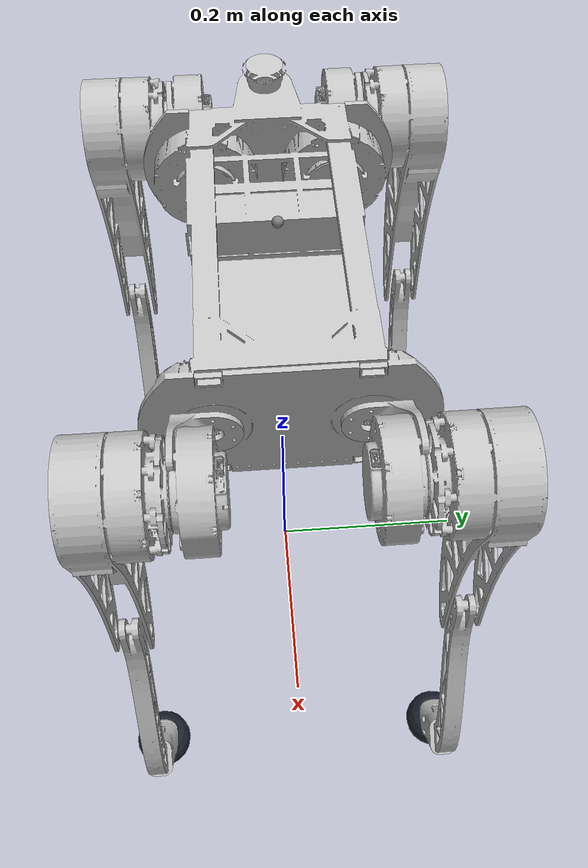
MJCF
<mujoco model="black_description">
  <compiler angle="radian" meshdir="assets"/>
  <option cone="elliptic" impratio="100"/>

  <default>
  <default class="black">
    <joint damping="0.1" armature="0.01" frictionloss="0.2"/>
  </default>
  <default class="foot">
    <geom type="sphere" priority="1" solimp="0.015 1 0.02" condim="6" friction="0.6 0.02 0.01"/>
  </default>
   <default class="motor">
    <motor ctrlrange="-33.5 33.5"/>
   </default>
  </default>

  <asset>
    <mesh name="trunk" file="trunk.STL"/>
    <mesh name="FL_hip" file="FL_hip.STL"/>
    <mesh name="FL_thigh" file="FL_thigh.STL"/>
    <mesh name="FL_calf" file="FL_calf.STL"/>
    <mesh name="FR_hip" file="FR_hip.STL"/>
    <mesh name="FR_thigh" file="FR_thigh.STL"/>
    <mesh name="FR_calf" file="FR_calf.STL"/>
    <mesh name="RR_hip" file="RR_hip.STL"/>
    <mesh name="RR_thigh" file="RR_thigh.STL"/>
    <mesh name="RR_calf" file="RR_calf.STL"/>
    <mesh name="RL_hip" file="RL_hip.STL"/>
    <mesh name="RL_thigh" file="RL_thigh.STL"/>
    <mesh name="RL_calf" file="RL_calf.STL"/>
  </asset>

  <worldbody>
    <geom size="0.0005 0.0005 0.0005" type="box" contype="0" conaffinity="0" group="1" density="0"/>
    <body name="trunk" pos= "0 0 0.5" childclass="black">
      <freejoint/>
      <inertial pos="-0.034324 0.00011667 -0.0701367" quat="0.499998 0.499162 -0.500917 0.499921" mass="5.723" diaginertia="0.012277 0.00872141 0.00759943"/>
      <geom type="mesh" contype="0" conaffinity="0" group="1" density="0" rgba="0.75294 0.75294 0.75294 1" mesh="trunk"/>
      <geom type="mesh" rgba="0.75294 0.75294 0.75294 1" mesh="trunk"/>
      <geom size="0.0005 0.0005 0.0005" type="box" contype="0" conaffinity="0" group="1" density="0" rgba="0.8 0 0 1"/>
      <site name="imu" pos="0 0 0" quat="1 0 0 0"/>
      <body name="FR_hip" pos="0.1566 -0.059999 -0.06425">
        <inertial pos="0.05138 -0.014784 -5.6642e-05" quat="0.718222 0.0109487 0.0108345 0.695644" mass="0.60559" diaginertia="0.000649601 0.00037398 0.000341509"/>
        <joint name="FR_hip_joint" pos="0 0 0" axis="1 0 0" range="-10 10" actuatorfrcrange="-20 20"/>
        <geom type="mesh" contype="0" conaffinity="0" group="1" density="0" rgba="0.75294 0.75294 0.75294 1" mesh="FR_hip"/>
        <geom type="mesh" rgba="0.75294 0.75294 0.75294 1" mesh="FR_hip"/>
        <body name="FR_thigh" pos="0.056 -0.0336 0" quat="0.707105 0 0 -0.707108">
          <inertial pos="0.039669 -0.0023188 -0.015479" quat="0.999775 -0.0212092 7.07592e-05 -9.25343e-05" mass="0.84232" diaginertia="0.0016834 0.00123603 0.000494576"/>
          <joint name="FR_thigh_joint" pos="0 0 0" axis="1 0 0" range="-10 10" actuatorfrcrange="-20 20"/>
          <geom type="mesh" contype="0" conaffinity="0" group="1" density="0" rgba="0.75294 0.75294 0.75294 1" mesh="FR_thigh"/>
          <body name="FR_calf" pos="0.0618 0 -0.25">
            <inertial pos="-6.80423e-05 0.0133885 -0.181221" quat="0.999779 0.0209922 -0.000251219 0.00128186" mass="0.35559" diaginertia="0.00175419 0.00171576 7.03881e-05"/>
            <joint name="FR_calf_joint" pos="0 0 0" axis="1 0 0" range="-10 10" actuatorfrcrange="-20 20"/>
            <geom type="mesh" contype="0" conaffinity="0" group="1" density="0" rgba="0.75294 0.75294 0.75294 1" mesh="FR_calf"/>
            <geom type="mesh" rgba="0.75294 0.75294 0.75294 1" mesh="FR_calf"/>
            <geom size="0.02" pos="0 0.0078843 -0.25749" contype="0" conaffinity="0" group="1" density="0" rgba="0.12 0.15 0.2 1"/>
            <geom class="foot" size="0.03" pos="0 0.0078843 -0.25749" rgba="0.12 0.15 0.2 1"/>
          </body>
        </body>
      </body>
      <body name="FL_hip" pos="0.1566 0.060001 -0.06425">
        <inertial pos="0.05138 0.014784 5.6642e-05" quat="0.695644 -0.0108345 -0.0109487 0.718222" mass="0.60559" diaginertia="0.000649601 0.00037398 0.000341509"/>
        <joint name="FL_hip_joint" pos="0 0 0" axis="1 0 0" range="-10 10" actuatorfrcrange="-20 20"/>
        <geom type="mesh" contype="0" conaffinity="0" group="1" density="0" rgba="0.75294 0.75294 0.75294 1" mesh="FL_hip"/>
        <geom type="mesh" rgba="0.75294 0.75294 0.75294 1" mesh="FL_hip"/>
        <body name="FL_thigh" pos="0.056 0.0336 0" quat="0.707105 0 0 0.707108">
          <inertial pos="0.039584 0.0023922 -0.015369" quat="0.999743 0.022652 8.07203e-05 -6.27535e-05" mass="0.83909" diaginertia="0.0016834 0.00123532 0.000495162"/>
          <joint name="FL_thigh_joint" pos="0 0 0" axis="1 0 0" range="-10 10" actuatorfrcrange="-20 20"/>
          <geom type="mesh" contype="0" conaffinity="0" group="1" density="0" rgba="0.75294 0.75294 0.75294 1" mesh="FL_thigh"/>
          <body name="FL_calf" pos="0.0618 0 -0.25">
            <inertial pos="6.80423e-05 -0.0133885 -0.181221" quat="0.999779 -0.0209922 0.000251214 0.00128192" mass="0.35559" diaginertia="0.00175419 0.00171576 7.03881e-05"/>
            <joint name="FL_calf_joint" pos="0 0 0" axis="1 0 0" range="-10 10" actuatorfrcrange="-20 20"/>
            <geom type="mesh" contype="0" conaffinity="0" group="1" density="0" rgba="0.75294 0.75294 0.75294 1" mesh="FL_calf"/>
            <geom type="mesh" rgba="0.75294 0.75294 0.75294 1" mesh="FL_calf"/>
            <geom size="0.02" pos="0 -0.0078843 -0.25749" contype="0" conaffinity="0" group="1" density="0" rgba="0.12 0.15 0.2 1"/>
            <geom class="foot" size="0.03" pos="0 -0.0078843 -0.25749" rgba="0.12 0.15 0.2 1"/>
          </body>
        </body>
      </body>
      <body name="RR_hip" pos="-0.1566 -0.059999 -0.06425" quat="-3.67321e-06 0 0 -1">
        <inertial pos="0.05138 0.014784 5.6642e-05" quat="0.695644 -0.0108345 -0.0109487 0.718222" mass="0.60559" diaginertia="0.000649601 0.00037398 0.000341509"/>
        <joint name="RR_hip_joint" pos="0 0 0" axis="1 0 0" range="-10 10" actuatorfrcrange="-20 20"/>
        <geom type="mesh" contype="0" conaffinity="0" group="1" density="0" rgba="0.75294 0.75294 0.75294 1" mesh="RR_hip"/>
        <geom type="mesh" rgba="0.75294 0.75294 0.75294 1" mesh="RR_hip"/>
        <body name="RR_thigh" pos="0.056 0.0336 0" quat="0.707105 0 0 0.707108">
          <inertial pos="0.039669 -0.0023188 -0.015479" quat="0.999775 -0.0212092 7.07592e-05 -9.25343e-05" mass="0.84232" diaginertia="0.0016834 0.00123603 0.000494576"/>
          <joint name="RR_thigh_joint" pos="0 0 0" axis="1 0 0" range="-10 10" actuatorfrcrange="-20 20"/>
          <geom type="mesh" contype="0" conaffinity="0" group="1" density="0" rgba="0.75294 0.75294 0.75294 1" mesh="RR_thigh"/>
          <geom type="mesh" rgba="0.75294 0.75294 0.75294 1" mesh="RR_thigh"/>
          <body name="RR_calf" pos="0.0618 0 -0.25">
            <inertial pos="-6.80423e-05 0.0133885 -0.181221" quat="0.999779 0.0209922 -0.000251219 0.00128186" mass="0.35559" diaginertia="0.00175419 0.00171576 7.03881e-05"/>
            <joint name="RR_calf_joint" pos="0 0 0" axis="1 0 0" range="-10 10" actuatorfrcrange="-20 20"/>
            <geom type="mesh" contype="0" conaffinity="0" group="1" density="0" rgba="0.75294 0.75294 0.75294 1" mesh="RR_calf"/>
            <geom type="mesh" rgba="0.75294 0.75294 0.75294 1" mesh="RR_calf"/>
            <geom size="0.02" pos="0 0.0078843 -0.25749" contype="0" conaffinity="0" group="1" density="0" rgba="0.12 0.15 0.2 1"/>
            <geom size="0.03" pos="0 0.0078843 -0.25749" rgba="0.12 0.15 0.2 1"/>
          </body>
        </body>
      </body>
      <body name="RL_hip" pos="-0.1566 0.060001 -0.06425" quat="-3.67321e-06 0 0 -1">
        <inertial pos="0.05138 -0.014784 -5.6642e-05" quat="0.718222 0.0109487 0.0108345 0.695644" mass="0.60559" diaginertia="0.000649601 0.00037398 0.000341509"/>
        <joint name="RL_hip_joint" pos="0 0 0" axis="1 0 0" range="-10 10" actuatorfrcrange="-20 20"/>
        <geom type="mesh" contype="0" conaffinity="0" group="1" density="0" rgba="0.75294 0.75294 0.75294 1" mesh="RL_hip"/>
        <geom type="mesh" rgba="0.75294 0.75294 0.75294 1" mesh="RL_hip"/>
        <body name="RL_thigh" pos="0.056 -0.0336 0" quat="0.707105 0 0 -0.707108">
          <inertial pos="0.039584 0.0023922 -0.015369" quat="0.999743 0.022652 8.07203e-05 -6.27535e-05" mass="0.83909" diaginertia="0.0016834 0.00123532 0.000495162"/>
          <joint name="RL_thigh_joint" pos="0 0 0" axis="1 0 0" range="-10 10" actuatorfrcrange="-20 20"/>
          <geom type="mesh" contype="0" conaffinity="0" group="1" density="0" rgba="0.75294 0.75294 0.75294 1" mesh="RL_thigh"/>
          <geom type="mesh" rgba="0.75294 0.75294 0.75294 1" mesh="RL_thigh"/>
          <body name="RL_calf" pos="0.0618 0 -0.25">
            <inertial pos="6.80423e-05 -0.0133885 -0.181221" quat="0.999779 -0.0209922 0.000251218 0.00128186" mass="0.35559" diaginertia="0.00175419 0.00171576 7.03881e-05"/>
            <joint name="RL_calf_joint" pos="0 0 0" axis="1 0 0" range="-10 10" actuatorfrcrange="-20 20"/>
            <geom type="mesh" contype="0" conaffinity="0" group="1" density="0" rgba="0.75294 0.75294 0.75294 1" mesh="RL_calf"/>
            <geom type="mesh" rgba="0.75294 0.75294 0.75294 1" mesh="RL_calf"/>
            <geom size="0.02" pos="0 -0.0078843 -0.25749" contype="0" conaffinity="0" group="1" density="0" rgba="0.12 0.15 0.2 1"/>
            <geom class="foot" size="0.03" pos="0 -0.0078843 -0.25749" rgba="0.12 0.15 0.2 1"/>
          </body>
        </body>
      </body>
    </body>
  </worldbody>

<actuator>
  <!-- FL -->
  <motor class="motor" joint="FL_hip_joint"    gear="1"/>
  <motor class="motor" joint="FL_thigh_joint"  gear="1"/>
  <motor class="motor" joint="FL_calf_joint"   gear="1"/>

  <!-- FR -->
  <motor class="motor" joint="FR_hip_joint"    gear="1"/>
  <motor class="motor" joint="FR_thigh_joint"  gear="1"/>
  <motor class="motor" joint="FR_calf_joint"   gear="1"/>

  <!-- RL -->
  <motor class="motor" joint="RL_hip_joint"    gear="1"/>
  <motor class="motor" joint="RL_thigh_joint"  gear="1"/>
  <motor class="motor" joint="RL_calf_joint"   gear="1"/>

  <!-- RR -->
  <motor class="motor" joint="RR_hip_joint"    gear="1"/>
  <motor class="motor" joint="RR_thigh_joint"  gear="1"/>
  <motor class="motor" joint="RR_calf_joint"   gear="1"/>

</actuator>

 <sensor>
    <jointpos name="FL_hip_pos" joint="FL_hip_joint"/>
    <jointpos name="FL_thigh_pos" joint="FL_thigh_joint"/>
    <jointpos name="FL_calf_pos" joint="FL_calf_joint"/>
    <jointpos name="FR_hip_pos" joint="FR_hip_joint"/>
    <jointpos name="FR_thigh_pos" joint="FR_thigh_joint"/>
    <jointpos name="FR_calf_pos" joint="FR_calf_joint"/>
    <jointpos name="RL_hip_pos" joint="RL_hip_joint"/>
    <jointpos name="RL_thigh_pos" joint="RL_thigh_joint"/>
    <jointpos name="RL_calf_pos" joint="RL_calf_joint"/>
    <jointpos name="RR_hip_pos" joint="RR_hip_joint"/>
    <jointpos name="RR_thigh_pos" joint="RR_thigh_joint"/>
    <jointpos name="RR_calf_pos" joint="RR_calf_joint"/>

    <jointvel name="FL_hip_vel" joint="FL_hip_joint"/>
    <jointvel name="FL_thigh_vel" joint="FL_thigh_joint"/>
    <jointvel name="FL_calf_vel" joint="FL_calf_joint"/>
    <jointvel name="FR_hip_vel" joint="FR_hip_joint"/>
    <jointvel name="FR_thigh_vel" joint="FR_thigh_joint"/>
    <jointvel name="FR_calf_vel" joint="FR_calf_joint"/>
    <jointvel name="RL_hip_vel" joint="RL_hip_joint"/>
    <jointvel name="RL_thigh_vel" joint="RL_thigh_joint"/>
    <jointvel name="RL_calf_vel" joint="RL_calf_joint"/>
    <jointvel name="RR_hip_vel" joint="RR_hip_joint"/>
    <jointvel name="RR_thigh_vel" joint="RR_thigh_joint"/>
    <jointvel name="RR_calf_vel" joint="RR_calf_joint"/>

    <framequat name="imu_quat" objtype="site" objname="imu"/>
    <gyro name="imu_gyro" site="imu"/>
    <accelerometer name="imu_acc" site="imu"/>

    <framepos name="frame_pos" objtype="site" objname="imu"/>
    <framelinvel name="frame_vel" objtype="site" objname="imu"/>

  </sensor>

<keyframe>
  <key name="default_pose"
        qpos="0 0 0.5 1 0 0 0
            0.0 -0.82 1.5
             -0.0 0.82 -1.5
             0.0 -0.82 1.5
             -0.0 0.82 -1.5"
        ctrl="0.0 0.82 -1.5
             -0.0 -0.82 1.5
             0.0  0.82 -1.5
             -0.0 -0.82 1.5"
  />
</keyframe>

</mujoco>
